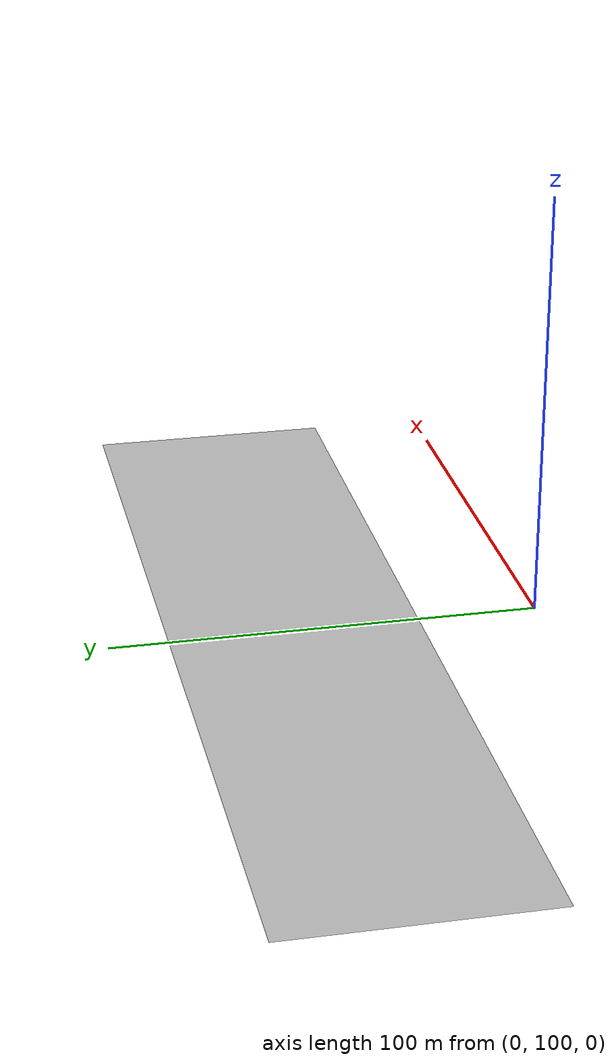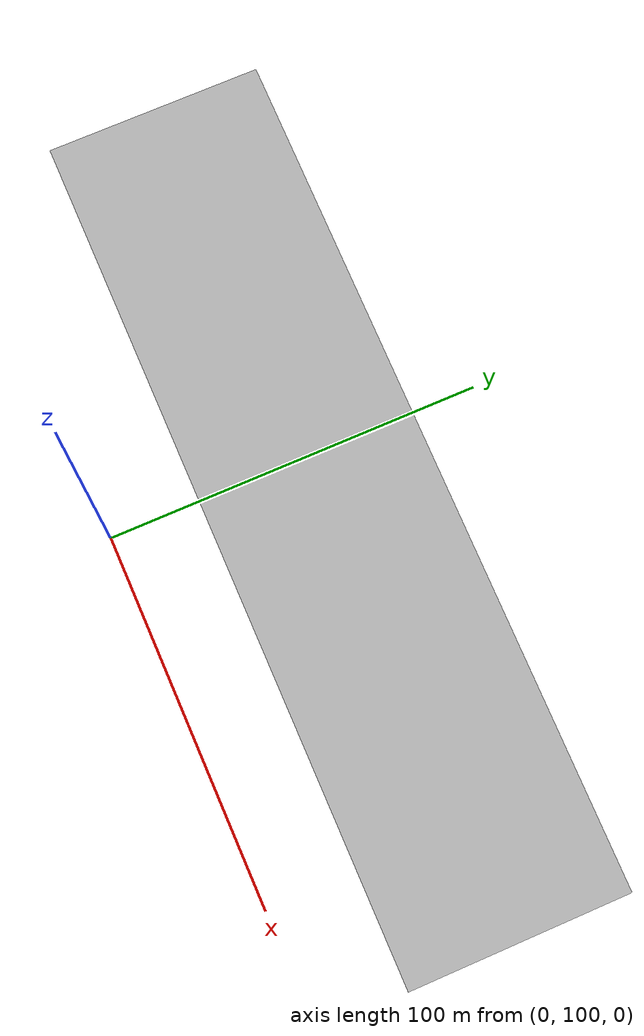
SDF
<?xml version="1.0" ?>
<sdf version="1.0">
  <model name="yacht_scene">
    <static>true</static>
    <link name="link">
      <collision name="scene">
        <pose>0 0 0 0 0 0</pose>
        <geometry>
          <mesh><uri>model://yacht_scene/yacht-collision.stl</uri></mesh>
        </geometry>
      </collision>

      <visual name="scene">
        <cast_shadows>false</cast_shadows>
        <pose>0 0 0 0 0 0</pose>
        <geometry>
          <mesh><uri>model://yacht_scene/yacht.dae</uri></mesh>
        </geometry>
      </visual>
    </link>
  </model>
</sdf>
